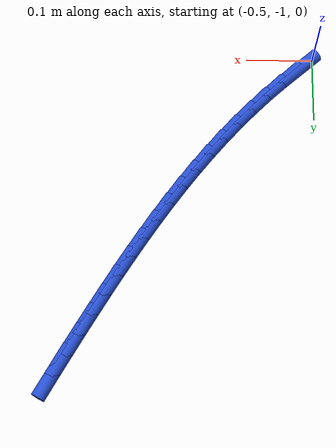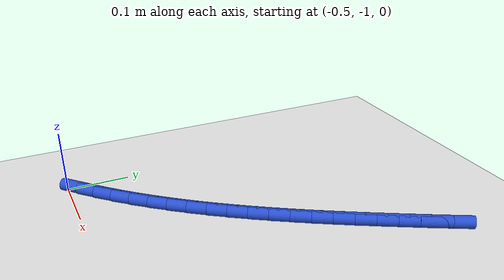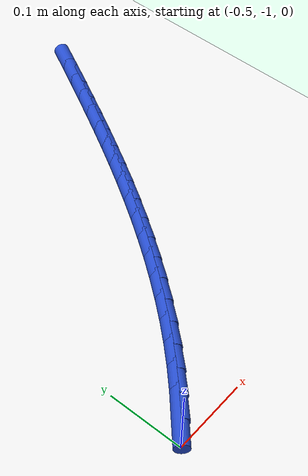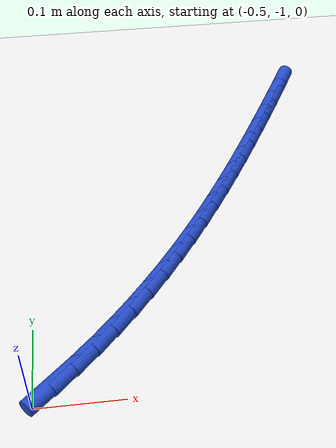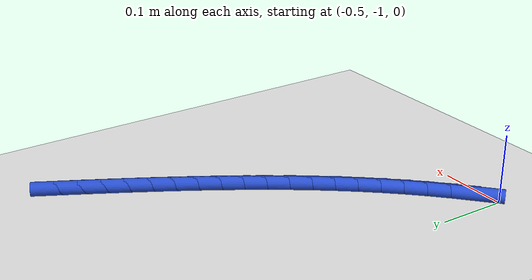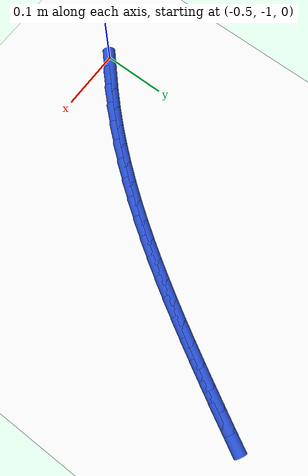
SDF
<sdf version="1.6">
 <world name="default">
  <model name="ground_plane">
   <static>1</static>
   <link name="link">
    <collision name="collision">
     <geometry><plane><normal>0 0 1</normal><size>100 100</size></plane></geometry>
     <surface><friction><ode><mu>100</mu><mu2>50</mu2></ode></friction></surface>
    </collision>
    <visual name="visual">
     <cast_shadows>0</cast_shadows>
     <geometry><plane><normal>0 0 1</normal><size>100 100</size></plane></geometry>
     <material>
      <script><uri>file://media/materials/scripts/gazebo.material</uri><name>Gazebo/WhiteGlow</name></script>
     </material>
    </visual>
   </link>
  </model>
  <model name="line">
   <link name="link_185">
    <pose>-0.47567256357242454 -0.9782720630266608 0.01 0 1.57 0.7402648118663775</pose>
    <collision name="collision">
     <geometry><cylinder><radius>0.01</radius><length>0.08</length></cylinder></geometry>
    </collision>
    <visual name="visual">
     <material>
      <script><name>Gazebo/Blue</name><uri>file://media/materials/scripts/gazebo.material</uri></script>
     </material>
     <geometry><cylinder><radius>0.01</radius><length>0.08</length></cylinder></geometry>
    </visual>
   </link>
   <link name="link_186">
    <pose>-0.45182800613318796 -0.956488265625678 0.01 0 1.57 0.7749319240679627</pose>
    <collision name="collision">
     <geometry><cylinder><radius>0.01</radius><length>0.08</length></cylinder></geometry>
    </collision>
    <visual name="visual">
     <material>
      <script><name>Gazebo/Blue</name><uri>file://media/materials/scripts/gazebo.material</uri></script>
     </material>
     <geometry><cylinder><radius>0.01</radius><length>0.08</length></cylinder></geometry>
    </visual>
   </link>
   <link name="link_187">
    <pose>-0.4288955721464509 -0.934030909393628 0.01 0 1.57 0.8080152512071648</pose>
    <collision name="collision">
     <geometry><cylinder><radius>0.01</radius><length>0.08</length></cylinder></geometry>
    </collision>
    <visual name="visual">
     <material>
      <script><name>Gazebo/Blue</name><uri>file://media/materials/scripts/gazebo.material</uri></script>
     </material>
     <geometry><cylinder><radius>0.01</radius><length>0.08</length></cylinder></geometry>
    </visual>
   </link>
   <link name="link_188">
    <pose>-0.40682386929506054 -0.910937529691218 0.01 0 1.57 0.8393895785201384</pose>
    <collision name="collision">
     <geometry><cylinder><radius>0.01</radius><length>0.08</length></cylinder></geometry>
    </collision>
    <visual name="visual">
     <material>
      <script><name>Gazebo/Blue</name><uri>file://media/materials/scripts/gazebo.material</uri></script>
     </material>
     <geometry><cylinder><radius>0.01</radius><length>0.08</length></cylinder></geometry>
    </visual>
   </link>
   <link name="link_189">
    <pose>-0.3855615052618646 -0.8872456618791552 0.01 0 1.57 0.868952826614853</pose>
    <collision name="collision">
     <geometry><cylinder><radius>0.01</radius><length>0.08</length></cylinder></geometry>
    </collision>
    <visual name="visual">
     <material>
      <script><name>Gazebo/Blue</name><uri>file://media/materials/scripts/gazebo.material</uri></script>
     </material>
     <geometry><cylinder><radius>0.01</radius><length>0.08</length></cylinder></geometry>
    </visual>
   </link>
   <link name="link_190">
    <pose>-0.3650570877297102 -0.8629928413181461 0.01 0 1.57 0.8966248115575637</pose>
    <collision name="collision">
     <geometry><cylinder><radius>0.01</radius><length>0.08</length></cylinder></geometry>
    </collision>
    <visual name="visual">
     <material>
      <script><name>Gazebo/Blue</name><uri>file://media/materials/scripts/gazebo.material</uri></script>
     </material>
     <geometry><cylinder><radius>0.01</radius><length>0.08</length></cylinder></geometry>
    </visual>
   </link>
   <link name="link_191">
    <pose>-0.34525922438144613 -0.8382166033688999 0.01 0 1.57 0.9223453410697723</pose>
    <collision name="collision">
     <geometry><cylinder><radius>0.01</radius><length>0.08</length></cylinder></geometry>
    </collision>
    <visual name="visual">
     <material>
      <script><name>Gazebo/Blue</name><uri>file://media/materials/scripts/gazebo.material</uri></script>
     </material>
     <geometry><cylinder><radius>0.01</radius><length>0.08</length></cylinder></geometry>
    </visual>
   </link>
   <link name="link_192">
    <pose>-0.3261165228999197 -0.8129544833921226 0.01 0 1.57 0.9460718657836473</pose>
    <collision name="collision">
     <geometry><cylinder><radius>0.01</radius><length>0.08</length></cylinder></geometry>
    </collision>
    <visual name="visual">
     <material>
      <script><name>Gazebo/Blue</name><uri>file://media/materials/scripts/gazebo.material</uri></script>
     </material>
     <geometry><cylinder><radius>0.01</radius><length>0.08</length></cylinder></geometry>
    </visual>
   </link>
   <link name="link_193">
    <pose>-0.3075775909679786 -0.7872440167485222 0.01 0 1.57 0.9677768872536034</pose>
    <collision name="collision">
     <geometry><cylinder><radius>0.01</radius><length>0.08</length></cylinder></geometry>
    </collision>
    <visual name="visual">
     <material>
      <script><name>Gazebo/Blue</name><uri>file://media/materials/scripts/gazebo.material</uri></script>
     </material>
     <geometry><cylinder><radius>0.01</radius><length>0.08</length></cylinder></geometry>
    </visual>
   </link>
   <link name="link_194">
    <pose>-0.2895910362684705 -0.7611227387988058 0.01 0 1.57 0.9874452939274262</pose>
    <collision name="collision">
     <geometry><cylinder><radius>0.01</radius><length>0.08</length></cylinder></geometry>
    </collision>
    <visual name="visual">
     <material>
      <script><name>Gazebo/Blue</name><uri>file://media/materials/scripts/gazebo.material</uri></script>
     </material>
     <geometry><cylinder><radius>0.01</radius><length>0.08</length></cylinder></geometry>
    </visual>
   </link>
   <link name="link_195">
    <pose>-0.2721054664842427 -0.7346281849036798 0.01 0 1.57 1.005071759757489</pose>
    <collision name="collision">
     <geometry><cylinder><radius>0.01</radius><length>0.08</length></cylinder></geometry>
    </collision>
    <visual name="visual">
     <material>
      <script><name>Gazebo/Blue</name><uri>file://media/materials/scripts/gazebo.material</uri></script>
     </material>
     <geometry><cylinder><radius>0.01</radius><length>0.08</length></cylinder></geometry>
    </visual>
   </link>
   <link name="link_196">
    <pose>-0.25506948929814377 -0.7077978904238532 0.01 0 1.57 1.0206583032915268</pose>
    <collision name="collision">
     <geometry><cylinder><radius>0.01</radius><length>0.08</length></cylinder></geometry>
    </collision>
    <visual name="visual">
     <material>
      <script><name>Gazebo/Blue</name><uri>file://media/materials/scripts/gazebo.material</uri></script>
     </material>
     <geometry><cylinder><radius>0.01</radius><length>0.08</length></cylinder></geometry>
    </visual>
   </link>
   <link name="link_197">
    <pose>-0.2384317123930211 -0.6806693907200326 0.01 0 1.57 1.0342120717982002</pose>
    <collision name="collision">
     <geometry><cylinder><radius>0.01</radius><length>0.08</length></cylinder></geometry>
    </collision>
    <visual name="visual">
     <material>
      <script><name>Gazebo/Blue</name><uri>file://media/materials/scripts/gazebo.material</uri></script>
     </material>
     <geometry><cylinder><radius>0.01</radius><length>0.08</length></cylinder></geometry>
    </visual>
   </link>
   <link name="link_198">
    <pose>-0.22214074345172227 -0.6532802211529254 0.01 0 1.57 1.045743387402861</pose>
    <collision name="collision">
     <geometry><cylinder><radius>0.01</radius><length>0.08</length></cylinder></geometry>
    </collision>
    <visual name="visual">
     <material>
      <script><name>Gazebo/Blue</name><uri>file://media/materials/scripts/gazebo.material</uri></script>
     </material>
     <geometry><cylinder><radius>0.01</radius><length>0.08</length></cylinder></geometry>
    </visual>
   </link>
   <link name="link_199">
    <pose>-0.20614519015709482 -0.6256679170832383 0.01 0 1.57 1.0552640711047419</pose>
    <collision name="collision">
     <geometry><cylinder><radius>0.01</radius><length>0.08</length></cylinder></geometry>
    </collision>
    <visual name="visual">
     <material>
      <script><name>Gazebo/Blue</name><uri>file://media/materials/scripts/gazebo.material</uri></script>
     </material>
     <geometry><cylinder><radius>0.01</radius><length>0.08</length></cylinder></geometry>
    </visual>
   </link>
   <link name="link_200">
    <pose>-0.19039366019198706 -0.5978700138716799 0.01 0 1.57 1.062786045744869</pose>
    <collision name="collision">
     <geometry><cylinder><radius>0.01</radius><length>0.08</length></cylinder></geometry>
    </collision>
    <visual name="visual">
     <material>
      <script><name>Gazebo/Blue</name><uri>file://media/materials/scripts/gazebo.material</uri></script>
     </material>
     <geometry><cylinder><radius>0.01</radius><length>0.08</length></cylinder></geometry>
    </visual>
   </link>
   <link name="link_201">
    <pose>-0.17483476123924635 -0.569924046878957 0.01 0 1.57 1.0683202097624138</pose>
    <collision name="collision">
     <geometry><cylinder><radius>0.01</radius><length>0.08</length></cylinder></geometry>
    </collision>
    <visual name="visual">
     <material>
      <script><name>Gazebo/Blue</name><uri>file://media/materials/scripts/gazebo.material</uri></script>
     </material>
     <geometry><cylinder><radius>0.01</radius><length>0.08</length></cylinder></geometry>
    </visual>
   </link>
   <link name="link_202">
    <pose>-0.1594171009817205 -0.5418675514657769 0.01 0 1.57 1.0727646109261868</pose>
    <collision name="collision">
     <geometry><cylinder><radius>0.01</radius><length>0.08</length></cylinder></geometry>
    </collision>
    <visual name="visual">
     <material>
      <script><name>Gazebo/Blue</name><uri>file://media/materials/scripts/gazebo.material</uri></script>
     </material>
     <geometry><cylinder><radius>0.01</radius><length>0.08</length></cylinder></geometry>
    </visual>
   </link>
   <link name="link_203">
    <pose>-0.1441162823556371 -0.5137280900838893 0.01 0 1.57 1.080184517438979</pose>
    <collision name="collision">
     <geometry><cylinder><radius>0.01</radius><length>0.08</length></cylinder></geometry>
    </collision>
    <visual name="visual">
     <material>
      <script><name>Gazebo/Blue</name><uri>file://media/materials/scripts/gazebo.material</uri></script>
     </material>
     <geometry><cylinder><radius>0.01</radius><length>0.08</length></cylinder></geometry>
    </visual>
   </link>
  </model>
 </world>
</sdf>
